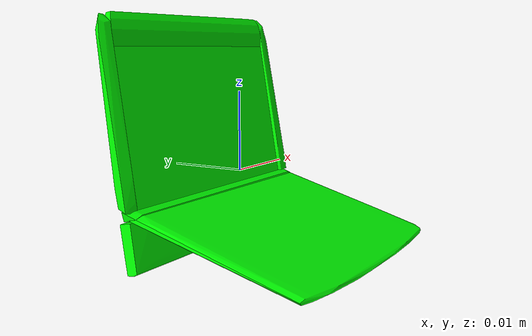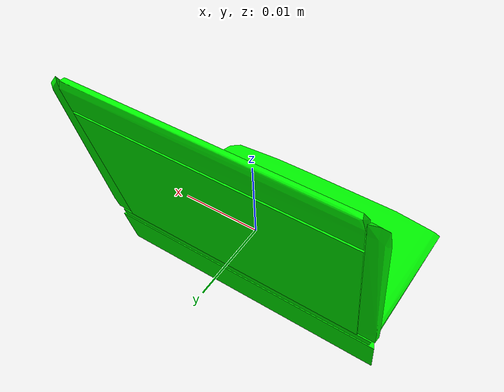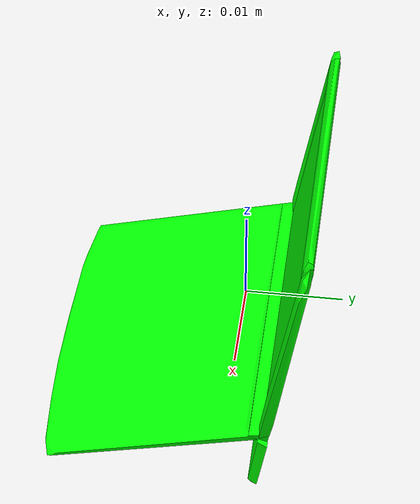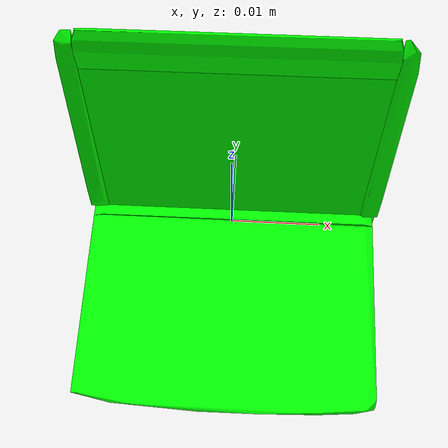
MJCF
<mujoco model="laptop_computer">
  <worldbody>
    <body name="laptop_computer">
      <body name="object">
        <geom pos="0 0 0" mesh="laptop_computer_0" type="mesh" friction="1 0.005 0.0001" solimp="1. 1. 0.001 0.02 6" solref="0.02 1" density="5000" rgba="0 1 0 1" group="1" condim="6"/>
        <geom pos="0 0 0" mesh="laptop_computer_0" type="mesh" density="5000" rgba="0 1 0 1" group="1" condim="6"/>
        <geom pos="0 0 0" mesh="laptop_computer_1" type="mesh" friction="1 0.005 0.0001" solimp="1. 1. 0.001 0.02 6" solref="0.02 1" density="5000" rgba="0 1 0 1" group="1" condim="6"/>
        <geom pos="0 0 0" mesh="laptop_computer_1" type="mesh" density="5000" rgba="0 1 0 1" group="1" condim="6"/>
        <geom pos="0 0 0" mesh="laptop_computer_2" type="mesh" friction="1 0.005 0.0001" solimp="1. 1. 0.001 0.02 6" solref="0.02 1" density="5000" rgba="0 1 0 1" group="1" condim="6"/>
        <geom pos="0 0 0" mesh="laptop_computer_2" type="mesh" density="5000" rgba="0 1 0 1" group="1" condim="6"/>
        <geom pos="0 0 0" mesh="laptop_computer_3" type="mesh" friction="1 0.005 0.0001" solimp="1. 1. 0.001 0.02 6" solref="0.02 1" density="5000" rgba="0 1 0 1" group="1" condim="6"/>
        <geom pos="0 0 0" mesh="laptop_computer_3" type="mesh" density="5000" rgba="0 1 0 1" group="1" condim="6"/>
        <geom pos="0 0 0" mesh="laptop_computer_4" type="mesh" friction="1 0.005 0.0001" solimp="1. 1. 0.001 0.02 6" solref="0.02 1" density="5000" rgba="0 1 0 1" group="1" condim="6"/>
        <geom pos="0 0 0" mesh="laptop_computer_4" type="mesh" density="5000" rgba="0 1 0 1" group="1" condim="6"/>
        <geom pos="0 0 0" mesh="laptop_computer_5" type="mesh" friction="1 0.005 0.0001" solimp="1. 1. 0.001 0.02 6" solref="0.02 1" density="5000" rgba="0 1 0 1" group="1" condim="6"/>
        <geom pos="0 0 0" mesh="laptop_computer_5" type="mesh" density="5000" rgba="0 1 0 1" group="1" condim="6"/>
        <geom pos="0 0 0" mesh="laptop_computer_6" type="mesh" friction="1 0.005 0.0001" solimp="1. 1. 0.001 0.02 6" solref="0.02 1" density="5000" rgba="0 1 0 1" group="1" condim="6"/>
        <geom pos="0 0 0" mesh="laptop_computer_6" type="mesh" density="5000" rgba="0 1 0 1" group="1" condim="6"/>
      </body>
      <body name="visual">
        <geom pos="0 0 0" mesh="laptop_computer_0" type="mesh" rgba="0 1 0 1" conaffinity="0" contype="0" group="0" mass="0.0001"/>
        <geom pos="0 0 0" mesh="laptop_computer_1" type="mesh" rgba="0 1 0 1" conaffinity="0" contype="0" group="0" mass="0.0001"/>
        <geom pos="0 0 0" mesh="laptop_computer_2" type="mesh" rgba="0 1 0 1" conaffinity="0" contype="0" group="0" mass="0.0001"/>
        <geom pos="0 0 0" mesh="laptop_computer_3" type="mesh" rgba="0 1 0 1" conaffinity="0" contype="0" group="0" mass="0.0001"/>
        <geom pos="0 0 0" mesh="laptop_computer_4" type="mesh" rgba="0 1 0 1" conaffinity="0" contype="0" group="0" mass="0.0001"/>
        <geom pos="0 0 0" mesh="laptop_computer_5" type="mesh" rgba="0 1 0 1" conaffinity="0" contype="0" group="0" mass="0.0001"/>
        <geom pos="0 0 0" mesh="laptop_computer_6" type="mesh" rgba="0 1 0 1" conaffinity="0" contype="0" group="0" mass="0.0001"/>
      </body>
      <site rgba="0 0 0 0" size="0.005" pos="0 0 -0.06" name="bottom_site"/>
      <site rgba="0 0 0 0" size="0.005" pos="0 0 0.04" name="top_site"/>
      <site rgba="0 0 0 0" size="0.005" pos="0.025 0.025 0" name="horizontal_radius_site"/>
    </body>
  </worldbody>
  <asset>
    <mesh file="meshes/laptop_computer_0.stl" name="laptop_computer_0" scale="0.001 0.001 0.001"/>
    <mesh file="meshes/laptop_computer_1.stl" name="laptop_computer_1" scale="0.001 0.001 0.001"/>
    <mesh file="meshes/laptop_computer_2.stl" name="laptop_computer_2" scale="0.001 0.001 0.001"/>
    <mesh file="meshes/laptop_computer_3.stl" name="laptop_computer_3" scale="0.001 0.001 0.001"/>
    <mesh file="meshes/laptop_computer_4.stl" name="laptop_computer_4" scale="0.001 0.001 0.001"/>
    <mesh file="meshes/laptop_computer_5.stl" name="laptop_computer_5" scale="0.001 0.001 0.001"/>
    <mesh file="meshes/laptop_computer_6.stl" name="laptop_computer_6" scale="0.001 0.001 0.001"/>
  </asset>
</mujoco>
